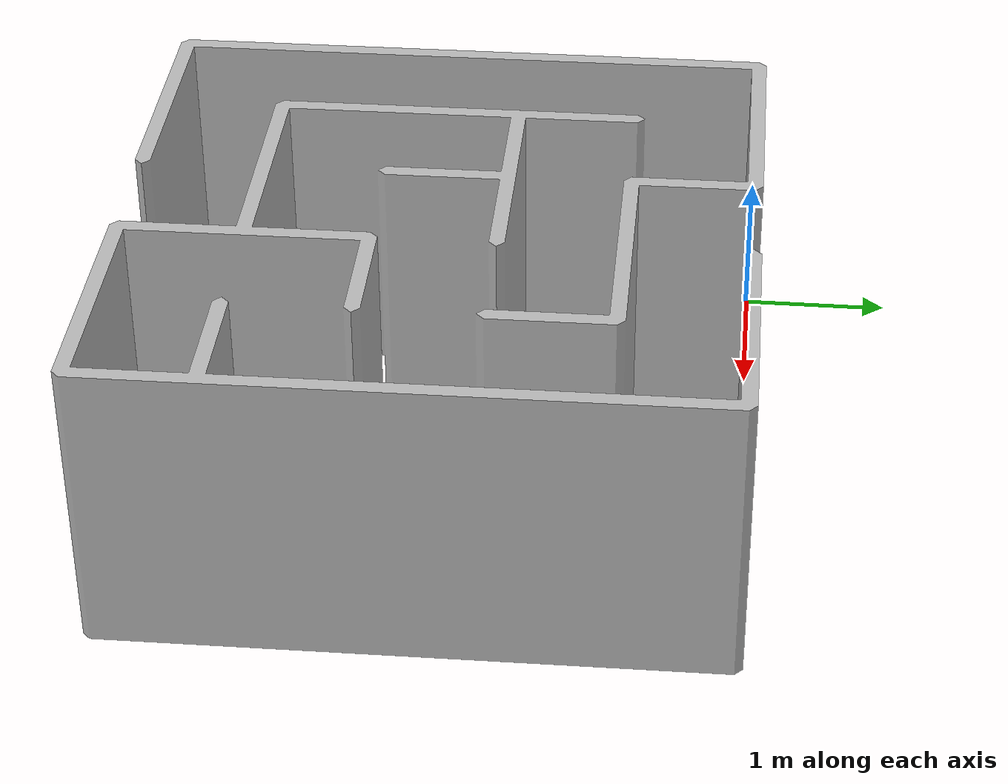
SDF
<?xml version="1.0" ?>
<sdf version="1.11">
  <model name="maze">
    <link name="link">
      <inertial>
        <mass>1</mass>
        <inertia>
          <ixx>0.0</ixx>
          <ixy>0.0</ixy>
          <ixz>0.0</ixz>
          <iyy>0.0</iyy>
          <iyz>0.0</iyz>
          <izz>0.0</izz>
        </inertia>
      </inertial>
      <collision name="collision">
        <pose>0 0 0 0 0 0</pose>
        <geometry>
          <mesh>
            <uri>model://maze/maze.stl</uri>
          </mesh>
        </geometry>
      </collision>
      <visual name="visual">
        <pose>0 0 0 0 0 0</pose>
        <geometry>
          <mesh>
            <uri>model://maze/maze.stl</uri>
          </mesh>
        </geometry>
      </visual>
    </link>
    <static>1</static>
    <plugin name="gz::sim::systems::TouchPlugin"
            filename="gz-sim-touchplugin-system">
      <target>my_robot</target>
      <namespace>maze</namespace>
      <time>0.001</time>
      <enabled>true</enabled>
    </plugin>
  </model>
</sdf>
